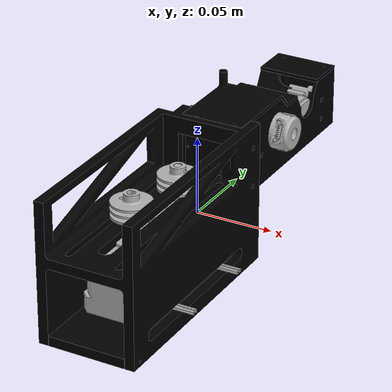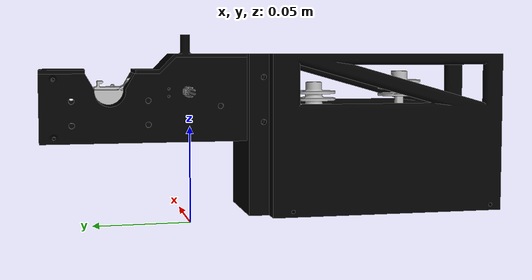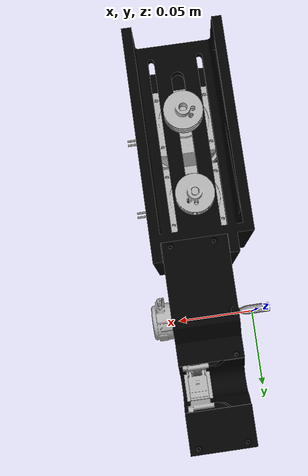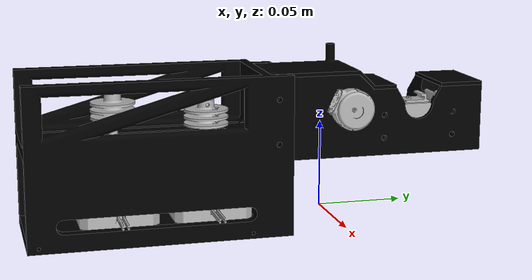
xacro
<?xml version = "1.0" encoding = "UTF-8" ?>
<robot xmlns:xacro="http://www.ros.org/wiki/xacro"  name="maps">

  <xacro:include filename="$(find maps_description)/urdf/maps.xacro" />

  <xacro:arg name="parent" default="world"/>
  <xacro:arg name="name" default="left"/>
  <xacro:arg name="offset_x" default="0.0"/>
  <xacro:arg name="offset_y" default="0.0"/>
  <xacro:arg name="offset_z" default="0.0"/>
  <xacro:arg name="offset_roll" default="0.0"/>
  <xacro:arg name="offset_pitch" default="0.0"/>
  <xacro:arg name="offset_yaw" default="0.0"/>

  <xacro:maps name="$(arg name)" parent="$(arg parent)" offset_x="$(arg offset_x)" offset_y="$(arg offset_y)" offset_z="$(arg offset_z)" offset_roll="$(arg offset_roll)" offset_pitch="$(arg offset_pitch)" offset_yaw="$(arg offset_yaw)"/>

  <gazebo>
    <plugin filename="libignition-gazebo-joint-state-publisher-system.so"
    name="ignition::gazebo::systems::JointStatePublisher"/>
  </gazebo>

  <link name="$(arg parent)"/>

</robot>

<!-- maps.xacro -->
<robot name="maps" xmlns:xacro="http://www.ros.org/wiki/xacro">

  <xacro:include filename="$(find maps_description)/urdf/materials.xacro" />
  <xacro:include filename="$(find maps_description)/urdf/maps.trans" />
  <xacro:include filename="$(find maps_description)/urdf/maps.gazebo" />

  <xacro:macro name="maps" params="name parent offset_x offset_y offset_z offset_roll offset_pitch offset_yaw">

    <link name="${name}_base_link">
    </link>

    <link name="${name}_bottom_plate">
      <inertial>
        <origin xyz="0.028700074056251957 -0.05628457208855371 0.11139109245941702" rpy="0 0 0"/>
        <mass value="0.038950716927574694"/>
        <inertia ixx="5e-05" iyy="5.7e-05" izz="7e-06" ixy="-0.0" iyz="0.0" ixz="0.0"/>
      </inertial>
      <visual>
        <origin xyz="0 0 0" rpy="0 0 0"/>
        <geometry>
          <mesh filename="file://$(find maps_description)/meshes/bottom_plate.stl" scale="0.001 0.001 0.001"/>
        </geometry>
        <material name="black"/>
      </visual>
      <collision>
        <origin xyz="0 0 0" rpy="0 0 0"/>
        <geometry>
          <mesh filename="file://$(find maps_description)/meshes/bottom_plate.stl" scale="0.001 0.001 0.001"/>
        </geometry>
      </collision>
    </link>

    <link name="${name}_Stepper_Housing_1">
      <inertial>
        <origin xyz="1.733766377811849e-05 0.03974239387012183 0.043506004361799196" rpy="0 0 0"/>
        <mass value="0.200297888849439"/>
        <inertia ixx="0.0005" iyy="0.000505" izz="0.000211" ixy="-2e-06" iyz="-2.1e-05" ixz="1e-05"/>
      </inertial>
      <visual>
        <origin xyz="-0.0287 0.059285 -0.048891" rpy="0 0 0"/>
        <geometry>
          <mesh filename="file://$(find maps_description)/meshes/Stepper_Housing_1.stl" scale="0.001 0.001 0.001"/>
        </geometry>
        <material name="black"/>
      </visual>
      <collision>
        <origin xyz="-0.0287 0.059285 -0.048891" rpy="0 0 0"/>
        <geometry>
          <mesh filename="file://$(find maps_description)/meshes/Stepper_Housing_1.stl" scale="0.001 0.001 0.001"/>
        </geometry>
      </collision>
    </link>

    <link name="${name}_Stepper_Motor_2">
      <inertial>
        <origin xyz="-0.02087857142042189 0.014407736892748543 0.013003084922047756" rpy="0 0 0"/>
        <mass value="0.5441132868332024"/>
        <inertia ixx="0.000152" iyy="0.000151" izz="0.000153" ixy="0.0" iyz="-0.0" ixz="0.0"/>
      </inertial>
      <visual>
        <origin xyz="-0.049606 0.045344 -0.111388" rpy="0 0 0"/>
        <geometry>
          <mesh filename="file://$(find maps_description)/meshes/Stepper_Motor_2.stl" scale="0.001 0.001 0.001"/>
        </geometry>
        <material name="silver"/>
      </visual>
      <collision>
        <origin xyz="-0.049606 0.045344 -0.111388" rpy="0 0 0"/>
        <geometry>
          <mesh filename="file://$(find maps_description)/meshes/Stepper_Motor_2.stl" scale="0.001 0.001 0.001"/>
        </geometry>
      </collision>
    </link>

    <link name="${name}_Stepper_Motor_Pulley_2">
      <inertial>
        <origin xyz="0.00014872218127425646 -0.0028059988982639585 0.05055790681907549" rpy="0 0 0"/>
        <mass value="0.0030564891358110494"/>
        <inertia ixx="0.0" iyy="0.0" izz="0.0" ixy="0.0" iyz="-0.0" ixz="0.0"/>
      </inertial>
      <visual>
        <origin xyz="-0.0287 -0.011715 -0.073891" rpy="0 0 0"/>
        <geometry>
          <mesh filename="file://$(find maps_description)/meshes/Stepper_Motor_Pulley_2.stl" scale="0.001 0.001 0.001"/>
        </geometry>
        <material name="silver"/>
      </visual>
      <collision>
        <origin xyz="-0.0287 -0.011715 -0.073891" rpy="0 0 0"/>
        <geometry>
          <mesh filename="file://$(find maps_description)/meshes/Stepper_Motor_Pulley_2.stl" scale="0.001 0.001 0.001"/>
        </geometry>
      </collision>
    </link>

    <link name="${name}_Stepper_Motor_1">
      <inertial>
        <origin xyz="-0.020878571420421887 0.01440773689274864 0.025003084922047586" rpy="0 0 0"/>
        <mass value="0.5441132868332024"/>
        <inertia ixx="0.000152" iyy="0.000151" izz="0.000153" ixy="0.0" iyz="-0.0" ixz="0.0"/>
      </inertial>
      <visual>
        <origin xyz="-0.049606 0.045344 -0.048888" rpy="0 0 0"/>
        <geometry>
          <mesh filename="file://$(find maps_description)/meshes/Stepper_Motor_1.stl" scale="0.001 0.001 0.001"/>
        </geometry>
        <material name="silver"/>
      </visual>
      <collision>
        <origin xyz="-0.049606 0.045344 -0.048888" rpy="0 0 0"/>
        <geometry>
          <mesh filename="file://$(find maps_description)/meshes/Stepper_Motor_1.stl" scale="0.001 0.001 0.001"/>
        </geometry>
      </collision>
    </link>

    <link name="${name}_Stepper_Motor_Pulley_1">
      <inertial>
        <origin xyz="-5.7740303404777565e-05 -0.008805998898263884 0.0001487405844412537" rpy="0 0 0"/>
        <mass value="0.0030564891358110494"/>
        <inertia ixx="0.0" iyy="0.0" izz="0.0" ixy="0.0" iyz="0.0" ixz="-0.0"/>
      </inertial>
      <visual>
        <origin xyz="-0.0287 -0.011715 -0.073891" rpy="0 0 0"/>
        <geometry>
          <mesh filename="file://$(find maps_description)/meshes/Stepper_Motor_Pulley_1.stl" scale="0.001 0.001 0.001"/>
        </geometry>
        <material name="silver"/>
      </visual>
      <collision>
        <origin xyz="-0.0287 -0.011715 -0.073891" rpy="0 0 0"/>
        <geometry>
          <mesh filename="file://$(find maps_description)/meshes/Stepper_Motor_Pulley_1.stl" scale="0.001 0.001 0.001"/>
        </geometry>
      </collision>
    </link>

    <link name="${name}_Housing_Half_Right_1">
      <inertial>
        <origin xyz="-0.015753834019128818 0.00807676983000056 -0.055751666594499136" rpy="0 0 0"/>
        <mass value="0.03618811857879113"/>
        <inertia ixx="7.6e-05" iyy="7.4e-05" izz="1.2e-05" ixy="-1e-06" iyz="-3e-06" ixz="-0.0"/>
      </inertial>
      <visual>
        <origin xyz="-0.054412 0.011344 -0.043888" rpy="0 0 0"/>
        <geometry>
          <mesh filename="file://$(find maps_description)/meshes/Housing_Half_Right_1.stl" scale="0.001 0.001 0.001"/>
        </geometry>
        <material name="black"/>
      </visual>
      <collision>
        <origin xyz="-0.054412 0.011344 -0.043888" rpy="0 0 0"/>
        <geometry>
          <mesh filename="file://$(find maps_description)/meshes/Housing_Half_Right_1.stl" scale="0.001 0.001 0.001"/>
        </geometry>
      </collision>
    </link>

    <link name="${name}_Lid_1">
      <inertial>
        <origin xyz="-0.021151562988249682 -0.0024511558531786215 0.05892507507140977" rpy="0 0 0"/>
        <mass value="0.009187360459117536"/>
        <inertia ixx="1.1e-05" iyy="1.2e-05" izz="1e-06" ixy="0.0" iyz="-1e-06" ixz="0.0"/>
      </inertial>
      <visual>
        <origin xyz="-0.053812 -0.025156 0.066112" rpy="0 0 0"/>
        <geometry>
          <mesh filename="file://$(find maps_description)/meshes/Lid_1.stl" scale="0.001 0.001 0.001"/>
        </geometry>
        <material name="black"/>
      </visual>
      <collision>
        <origin xyz="-0.053812 -0.025156 0.066112" rpy="0 0 0"/>
        <geometry>
          <mesh filename="file://$(find maps_description)/meshes/Lid_1.stl" scale="0.001 0.001 0.001"/>
        </geometry>
      </collision>
    </link>

    <link name="${name}_Heat_Set_Nitinol_Tubing_1">
      <inertial>
        <origin xyz="0.013366557969331724 2.5787753891830245e-07 -1.2661123537550408e-08" rpy="0 0 0"/>
        <mass value="0.0013649495549052447"/>
        <inertia ixx="0.0" iyy="0.0" izz="0.0" ixy="-0.0" iyz="0.0" ixz="-0.0"/>
      </inertial>
      <visual>
        <origin xyz="-0.014706 -0.00794 3e-06" rpy="0 0 0"/>
        <geometry>
          <mesh filename="file://$(find maps_description)/meshes/Heat_Set_Nitinol_Tubing_1.stl" scale="0.001 0.001 0.001"/>
        </geometry>
        <material name="silver"/>
      </visual>
      <collision>
        <origin xyz="-0.014706 -0.00794 3e-06" rpy="0 0 0"/>
        <geometry>
          <mesh filename="file://$(find maps_description)/meshes/Heat_Set_Nitinol_Tubing_1.stl" scale="0.001 0.001 0.001"/>
        </geometry>
      </collision>
    </link>

    <link name="${name}_Clamp_1">
      <inertial>
        <origin xyz="-0.04910599472849593 -0.006490413917958411 0.031091296731927072" rpy="0 0 0"/>
        <mass value="0.0004050623246577962"/>
        <inertia ixx="0.0" iyy="0.0" izz="0.0" ixy="0.0" iyz="0.0" ixz="-0.0"/>
      </inertial>
      <visual>
        <origin xyz="-0.092112 -0.015881 0.071823" rpy="0 0 0"/>
        <geometry>
          <mesh filename="file://$(find maps_description)/meshes/Clamp_1.stl" scale="0.001 0.001 0.001"/>
        </geometry>
        <material name="silver"/>
      </visual>
      <collision>
        <origin xyz="-0.092112 -0.015881 0.071823" rpy="0 0 0"/>
        <geometry>
          <mesh filename="file://$(find maps_description)/meshes/Clamp_1.stl" scale="0.001 0.001 0.001"/>
        </geometry>
      </collision>
    </link>

    <link name="${name}_9271K713_Torsion_Spring_1">
      <inertial>
        <origin xyz="-0.04587815379893997 -0.005191137446164394 0.05995234757403412" rpy="0 0 0"/>
        <mass value="0.00032691523230906554"/>
        <inertia ixx="0.0" iyy="0.0" izz="0.0" ixy="0.0" iyz="-0.0" ixz="-0.0"/>
      </inertial>
      <visual>
        <origin xyz="-0.08886 -0.011717 0.091848" rpy="0 0 0"/>
        <geometry>
          <mesh filename="file://$(find maps_description)/meshes/9271K713_Torsion_Spring_1.stl" scale="0.001 0.001 0.001"/>
        </geometry>
        <material name="silver"/>
      </visual>
      <collision>
        <origin xyz="-0.08886 -0.011717 0.091848" rpy="0 0 0"/>
        <geometry>
          <mesh filename="file://$(find maps_description)/meshes/9271K713_Torsion_Spring_1.stl" scale="0.001 0.001 0.001"/>
        </geometry>
      </collision>
    </link>

    <link name="${name}_Carriage_1">
      <inertial>
        <origin xyz="-0.030067310222141604 -0.012791984068765925 -0.0007101623118073164" rpy="0 0 0"/>
        <mass value="0.005608507543620901"/>
        <inertia ixx="0.0" iyy="0.0" izz="0.0" ixy="0.0" iyz="0.0" ixz="-0.0"/>
      </inertial>
      <visual>
        <origin xyz="-0.073212 -0.015881 0.039665" rpy="0 0 0"/>
        <geometry>
          <mesh filename="file://$(find maps_description)/meshes/Carriage_1.stl" scale="0.001 0.001 0.001"/>
        </geometry>
        <material name="silver"/>
      </visual>
      <collision>
        <origin xyz="-0.073212 -0.015881 0.039665" rpy="0 0 0"/>
        <geometry>
          <mesh filename="file://$(find maps_description)/meshes/Carriage_1.stl" scale="0.001 0.001 0.001"/>
        </geometry>
      </collision>
    </link>

    <link name="${name}_Encoder_1">
      <inertial>
        <origin xyz="-0.0163358433032059 -0.00726671029354733 0.0014768820366421718" rpy="0 0 0"/>
        <mass value="0.0059021295354430466"/>
        <inertia ixx="0.0" iyy="0.0" izz="0.0" ixy="-0.0" iyz="-0.0" ixz="-0.0"/>
      </inertial>
      <visual>
        <origin xyz="-0.073212 -0.015881 6e-06" rpy="0 0 0"/>
        <geometry>
          <mesh filename="file://$(find maps_description)/meshes/Encoder_1.stl" scale="0.001 0.001 0.001"/>
        </geometry>
        <material name="silver"/>
      </visual>
      <collision>
        <origin xyz="-0.073212 -0.015881 6e-06" rpy="0 0 0"/>
        <geometry>
          <mesh filename="file://$(find maps_description)/meshes/Encoder_1.stl" scale="0.001 0.001 0.001"/>
        </geometry>
      </collision>
    </link>

    <link name="${name}_Housing_Half_Left_1">
      <inertial>
        <origin xyz="-0.018099267665483827 -0.02307870475773183 0.042790560700989036" rpy="0 0 0"/>
        <mass value="0.020164852093154183"/>
        <inertia ixx="2e-05" iyy="1.8e-05" izz="3e-06" ixy="0.0" iyz="-1e-06" ixz="1e-06"/>
      </inertial>
      <visual>
        <origin xyz="-0.037412 -0.022156 0.068612" rpy="0 0 0"/>
        <geometry>
          <mesh filename="file://$(find maps_description)/meshes/Housing_Half_Left_1.stl" scale="0.001 0.001 0.001"/>
        </geometry>
        <material name="black"/>
      </visual>
      <collision>
        <origin xyz="-0.037412 -0.022156 0.068612" rpy="0 0 0"/>
        <geometry>
          <mesh filename="file://$(find maps_description)/meshes/Housing_Half_Left_1.stl" scale="0.001 0.001 0.001"/>
        </geometry>
      </collision>
    </link>

    <joint name="${name}_joint_0" type="fixed">
      <parent link="${parent}"/>
      <child link="${name}_base_link"/>
      <origin xyz="${offset_x} ${offset_y} ${offset_z}" rpy="${offset_roll} ${offset_pitch} ${offset_yaw}"/>
    </joint>

    <joint name="${name}_Rigid 117" type="fixed">
      <origin xyz="0.00 0.00 0.060" rpy="1.57079632368 0 0"/>
      <parent link="${name}_base_link"/>
      <child link="${name}_bottom_plate"/>
    </joint>

    <joint name="${name}_Rigid 118" type="fixed">
      <origin xyz="0.0287 -0.059285 0.048891" rpy="0 0 0"/>
      <parent link="${name}_bottom_plate"/>
      <child link="${name}_Stepper_Housing_1"/>
    </joint>

    <joint name="${name}_Rigid 119" type="fixed">
      <origin xyz="0.049606 -0.045344 0.111388" rpy="0 0 0"/>
      <parent link="${name}_bottom_plate"/>
      <child link="${name}_Stepper_Motor_2"/>
    </joint>

    <joint name="${name}_Rigid 120" type="fixed">
      <origin xyz="-0.020906 0.057059 -0.037497" rpy="0 0 0"/>
      <parent link="${name}_Stepper_Motor_2"/>
      <child link="${name}_Stepper_Motor_Pulley_2"/>
    </joint>

    <joint name="${name}_Rigid 121" type="fixed">
      <origin xyz="0.049606 -0.045344 0.048888" rpy="0 0 0"/>
      <parent link="${name}_bottom_plate"/>
      <child link="${name}_Stepper_Motor_1"/>
    </joint>

    <joint name="${name}_Rigid 122" type="fixed">
      <origin xyz="-0.020906 0.057059 0.025003" rpy="0 0 0"/>
      <parent link="${name}_Stepper_Motor_1"/>
      <child link="${name}_Stepper_Motor_Pulley_1"/>
    </joint>

    <joint name="${name}_Rigid 123" type="fixed">
      <origin xyz="0.025712 0.047941 -0.005003" rpy="0 0 0"/>
      <parent link="${name}_Stepper_Housing_1"/>
      <child link="${name}_Housing_Half_Right_1"/>
    </joint>

    <joint name="${name}_Rigid 125" type="fixed">
      <origin xyz="-0.0006 0.0365 -0.11" rpy="0 0 0"/>
      <parent link="${name}_Housing_Half_Right_1"/>
      <child link="${name}_Lid_1"/>
    </joint>

    <joint name="${name}_Nitinol Rotation" type="continuous">
      <origin xyz="-0.022706 -0.014216 0.068609" rpy="0 0 0"/>
      <parent link="${name}_Housing_Half_Left_1"/>
      <child link="${name}_Heat_Set_Nitinol_Tubing_1"/>
      <axis xyz="1.0 0.0 0.0"/>
    </joint>

    <joint name="${name}_Rigid 127" type="fixed">
      <origin xyz="0.0189 0.0 -0.032158" rpy="0 0 0"/>
      <parent link="${name}_Carriage_1"/>
      <child link="${name}_Clamp_1"/>
    </joint>

    <joint name="${name}_Rigid 128" type="fixed">
      <origin xyz="0.015648 -0.004164 -0.052183" rpy="0 0 0"/>
      <parent link="${name}_Carriage_1"/>
      <child link="${name}_9271K713_Torsion_Spring_1"/>
    </joint>

    <joint name="${name}_Clamp Rotation" type="continuous">
      <origin xyz="0.0188 0.027225 -0.083553" rpy="0 0 0"/>
      <parent link="${name}_Housing_Half_Right_1"/>
      <child link="${name}_Carriage_1"/>
      <axis xyz="-1.0 -0.0 -0.0"/>
    </joint>

    <joint name="${name}_Rigid 130" type="fixed">
      <origin xyz="0.0188 0.027225 -0.043894" rpy="0 0 0"/>
      <parent link="${name}_Housing_Half_Right_1"/>
      <child link="${name}_Encoder_1"/>
    </joint>

    <joint name="${name}_Rigid 131" type="fixed">
      <origin xyz="-0.017 0.0335 -0.1125" rpy="0 0 0"/>
      <parent link="${name}_Housing_Half_Right_1"/>
      <child link="${name}_Housing_Half_Left_1"/>
    </joint>

  </xacro:macro>

</robot>

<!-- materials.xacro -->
<robot name="maps" xmlns:xacro="http://www.ros.org/wiki/xacro" >

<material name="silver">
  <color rgba="0.700 0.700 0.700 1.000"/>
</material>

<material name="black">
  <color rgba="0.000 0.000 0.000 1.000"/>
</material>

</robot>

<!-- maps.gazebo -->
<robot name="maps" xmlns:xacro="http://www.ros.org/wiki/xacro" >

<xacro:property name="body_color" value="Gazebo/Silver" />

<gazebo reference="bottom_plate">
  <material>${body_color}</material>
  <mu1>0.2</mu1>
  <mu2>0.2</mu2>
  <selfCollide>true</selfCollide>
  <gravity>true</gravity>
</gazebo>

<gazebo reference="Stepper_Housing_1">
  <material>${body_color}</material>
  <mu1>0.2</mu1>
  <mu2>0.2</mu2>
  <selfCollide>true</selfCollide>
</gazebo>

<gazebo reference="Stepper_Motor_2">
  <material>${body_color}</material>
  <mu1>0.2</mu1>
  <mu2>0.2</mu2>
  <selfCollide>true</selfCollide>
</gazebo>

<gazebo reference="Stepper_Motor_Pulley_2">
  <material>${body_color}</material>
  <mu1>0.2</mu1>
  <mu2>0.2</mu2>
  <selfCollide>true</selfCollide>
</gazebo>

<gazebo reference="Stepper_Motor_1">
  <material>${body_color}</material>
  <mu1>0.2</mu1>
  <mu2>0.2</mu2>
  <selfCollide>true</selfCollide>
</gazebo>

<gazebo reference="Stepper_Motor_Pulley_1">
  <material>${body_color}</material>
  <mu1>0.2</mu1>
  <mu2>0.2</mu2>
  <selfCollide>true</selfCollide>
</gazebo>

<gazebo reference="Housing_Half_Right_1">
  <material>${body_color}</material>
  <mu1>0.2</mu1>
  <mu2>0.2</mu2>
  <selfCollide>true</selfCollide>
</gazebo>

<gazebo reference="Lid_1">
  <material>${body_color}</material>
  <mu1>0.2</mu1>
  <mu2>0.2</mu2>
  <selfCollide>true</selfCollide>
</gazebo>

<gazebo reference="Heat_Set_Nitinol_Tubing_1">
  <material>${body_color}</material>
  <mu1>0.2</mu1>
  <mu2>0.2</mu2>
  <selfCollide>true</selfCollide>
</gazebo>

<gazebo reference="Clamp_1">
  <material>${body_color}</material>
  <mu1>0.2</mu1>
  <mu2>0.2</mu2>
  <selfCollide>true</selfCollide>
</gazebo>

<gazebo reference="9271K713_Torsion_Spring_1">
  <material>${body_color}</material>
  <mu1>0.2</mu1>
  <mu2>0.2</mu2>
  <selfCollide>true</selfCollide>
</gazebo>

<gazebo reference="Carriage_1">
  <material>${body_color}</material>
  <mu1>0.2</mu1>
  <mu2>0.2</mu2>
  <selfCollide>true</selfCollide>
</gazebo>

<gazebo reference="Encoder_1">
  <material>${body_color}</material>
  <mu1>0.2</mu1>
  <mu2>0.2</mu2>
  <selfCollide>true</selfCollide>
</gazebo>

<gazebo reference="Housing_Half_Left_1">
  <material>${body_color}</material>
  <mu1>0.2</mu1>
  <mu2>0.2</mu2>
  <selfCollide>true</selfCollide>
</gazebo>

</robot>
